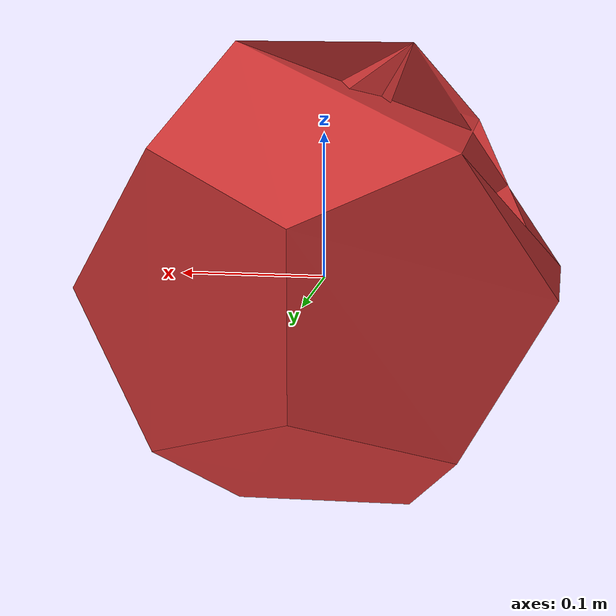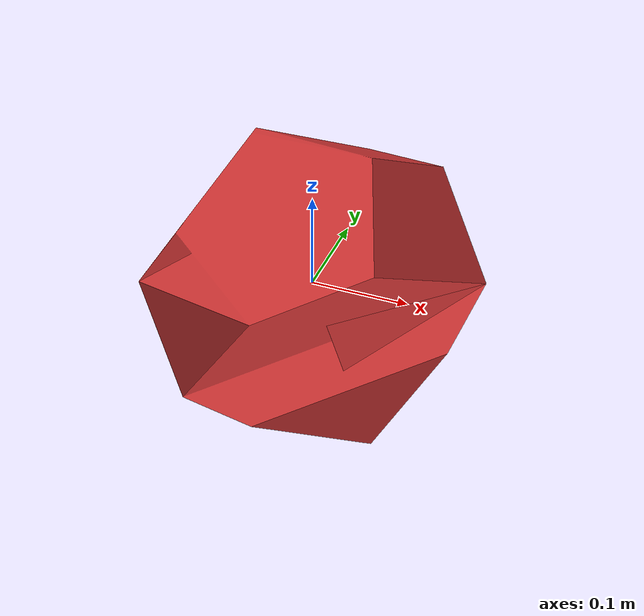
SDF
<?xml version="1.0"?>
<sdf version="1.7">
  <model name="dodecahedron_variant">
    <link name="dodecahedron_variant_link">
      <inertial>
        <mass>1.0</mass>
        <inertia>
          <ixx>0.04</ixx>
          <iyy>0.04</iyy>
          <izz>0.04</izz>
          <ixy>0.0</ixy>
          <ixz>0.0</ixz>
          <iyz>0.0</iyz>
        </inertia>
      </inertial>
      <visual name="dodecahedron_variant_visual">
        <geometry>
          <mesh>
            <uri>dodecahedron.obj</uri>
            <scale>0.1 0.1 0.1</scale>
          </mesh>
        </geometry>
        <material>
          <diffuse>0.8 0.2 0.2 1</diffuse>
          <ambient>0.3 0.1 0.1 1</ambient>
        </material>
      </visual>
    </link>
  </model>
</sdf>
